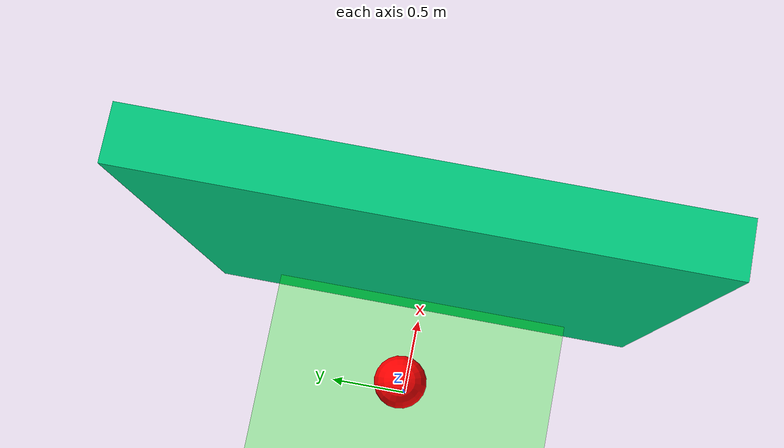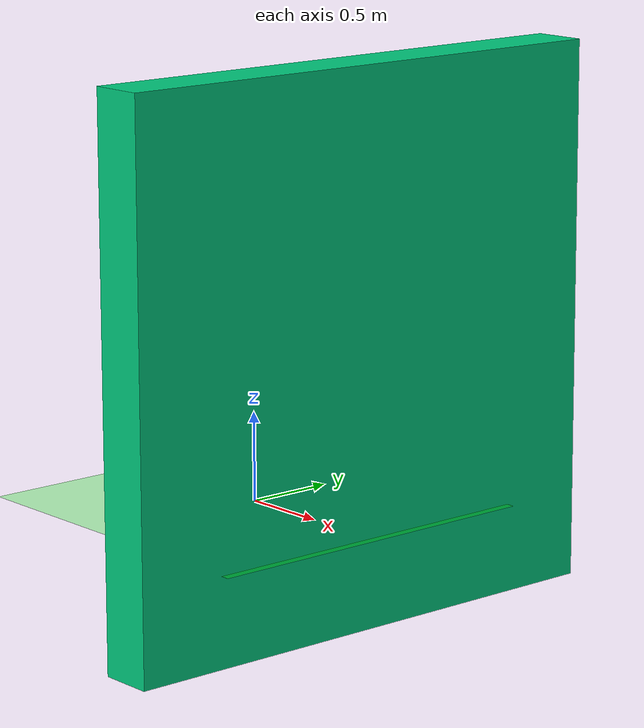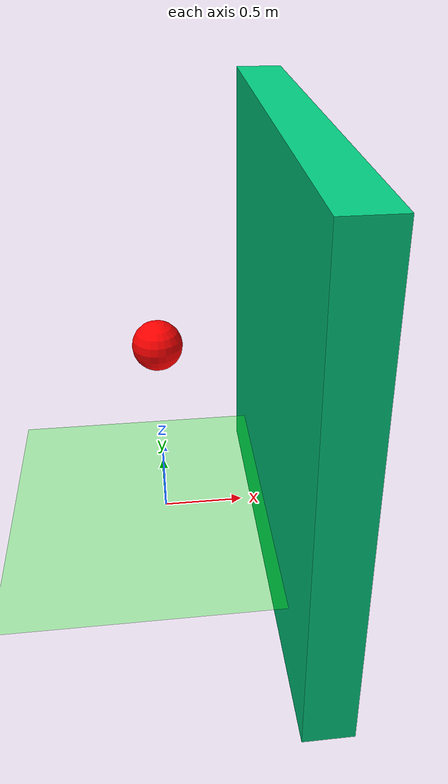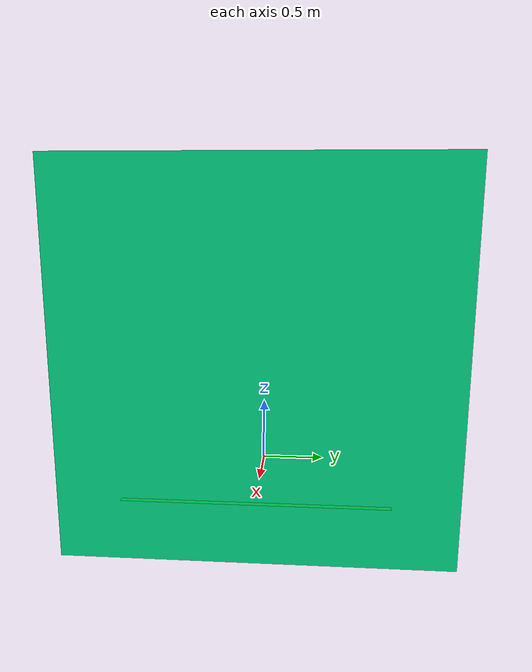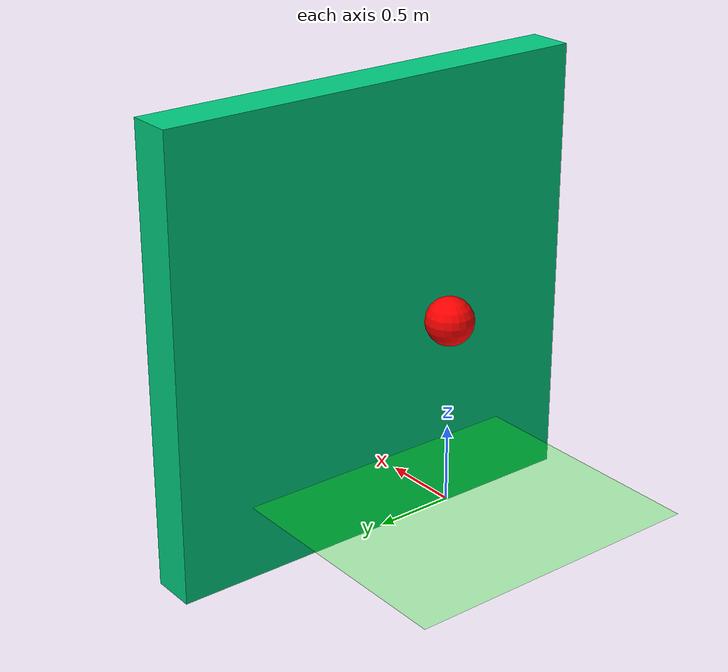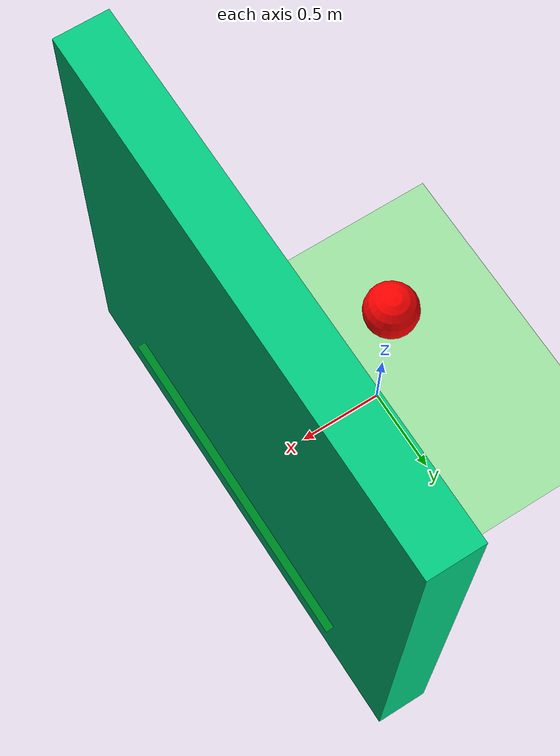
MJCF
<mujoco>
<compiler angle="radian" coordinate="local" inertiafromgeom="true"/>
<default>
	<joint armature="0" damping="0" limited="false" />
	<geom conaffinity="1" condim="3" density="100" friction="1 0.5 0.5" margin="0.01" rgba="0.8 0.6 0.4 1" />
</default>
<option gravity="0 0 0" timestep="0.005"/>
   <worldbody>
            <geom condim="3" size="1.0 1.0 0.02" rgba="0 1 0 1" type="plane"/>
      <light diffuse=".5 .5 .5" pos="0 0 10" dir="0 0 -1"/>

        <body name="ball" pos="0 0 1.2">
            <joint axis="1 0 0" damping="0.1" name="slide0" pos="0 0 0" type="slide"/>
            <joint axis="0 1 0" damping="0.1" name="slide1" pos="0 0 0" type="slide"/>
 	    <joint axis="0 0 1" damping="0.1" name="slide2" pos="0 0 0" type="slide"/>
            <geom mass="10" pos="0 0 0" rgba="1 0 0 1" size="0.15" type="sphere"/>
			<camera euler="0 0 0" fovy="40" name="rgb" pos="0 0 2.5"></camera>
        </body>

 	<body name="wall" pos="0.8 0 1">
            <geom mass="1000" pos="0 0 0" rgba="0 0.8 0.5 1" size="0.15 1.5 1.5"  type="box"/>
            <joint axis="1 0 0" name="wall:slidex" type="slide"/>
            <joint axis="0 1 0" name="wall:slidey" type="slide"/>
        </body>

   </worldbody>
    <actuator>
        <motor name="act0" gear="2000.0" joint="slide0"/>
        <motor name="act1" gear="2000.0" joint="slide1"/>
    </actuator>
</mujoco>
